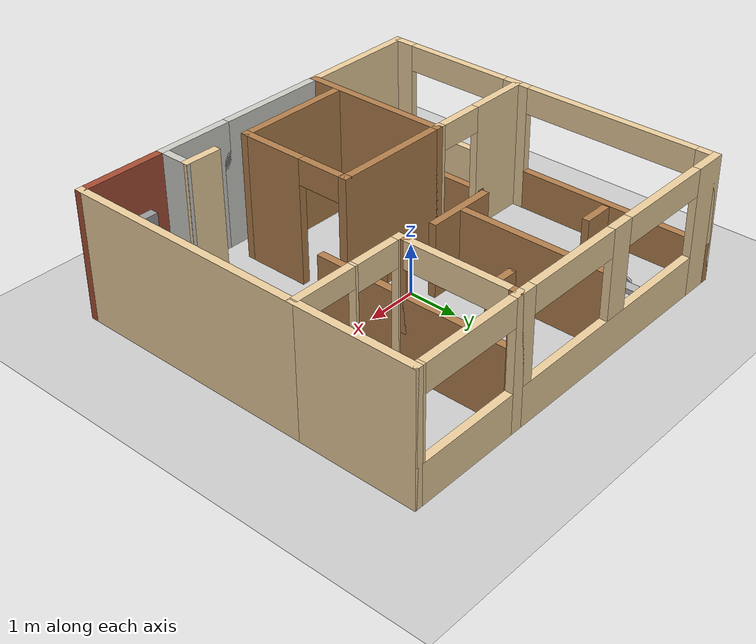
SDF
<sdf version="1.5">
 <world name="default">
  <plugin name="hello_world" filename="libhello_world.so"/>
  <light name="sun" type="directional">
   <pose>0 0 10 0 -0 0</pose>
   <diffuse>0.8 0.8 0.8 1</diffuse>
   <specular>0.2 0.2 0.2 1</specular>
   <attenuation>
    <range>1000</range>
    <constant>0.9</constant>
    <linear>0.01</linear>
    <quadratic>0.001</quadratic>
   </attenuation>
   <direction>-0.5 0.1 -0.9</direction>
  </light>
  <model name="ground_plane">
   <static>1</static>
   <link name="link">
    <collision name="collision">
     <geometry><plane><normal>0 0 1</normal><size>100 100</size></plane></geometry>
     <surface>
      <contact><collide_bitmask>65535</collide_bitmask></contact>
      <friction><ode><mu>100</mu><mu2>50</mu2></ode></friction>
     </surface>
    </collision>
    <visual name="visual">
     <cast_shadows>0</cast_shadows>
     <geometry><plane><normal>0 0 1</normal><size>100 100</size></plane></geometry>
     <material>
      <script><uri>file://media/materials/scripts/gazebo.material</uri><name>Gazebo/Grey</name></script>
     </material>
    </visual>
   </link>
  </model>
  <gravity>0 0 -9.8</gravity>
  <magnetic_field>6e-06 2.3e-05 -4.2e-05</magnetic_field>
  <atmosphere type="adiabatic"/>
  <physics name="default_physics" default="0" type="ode">
   <max_step_size>0.001</max_step_size>
   <real_time_factor>1</real_time_factor>
   <real_time_update_rate>1000</real_time_update_rate>
  </physics>
  <scene><ambient>0.4 0.4 0.4 1</ambient><background>0.7 0.7 0.7 1</background><shadows>1</shadows></scene>
  <audio><device>default</device></audio>
  <spherical_coordinates>
   <surface_model>EARTH_WGS84</surface_model>
   <latitude_deg>0</latitude_deg>
   <longitude_deg>0</longitude_deg>
   <elevation>0</elevation>
   <heading_deg>0</heading_deg>
  </spherical_coordinates>
  <model name="officeFloor">
   <pose>0.168407 0.014707 0 0 -0 0</pose>
   <link name="Stairs_2">
    <visual name="Stairs_2_Visual_0">
     <pose>3.37694 -1.65753 0.125 0 -0 0</pose>
     <geometry><box><size>0.8 0.16125 0.25</size></box></geometry>
     <material>
      <script><uri>file://media/materials/scripts/gazebo.material</uri><name>Gazebo/Grey</name></script>
      <ambient>1 1 1 1</ambient>
     </material>
     <meta><layer>0</layer></meta>
    </visual>
    <collision name="Stairs_2_Collision_0">
     <geometry><box><size>0.8 0.16125 0.25</size></box></geometry>
     <pose>3.37694 -1.65753 0.125 0 -0 0</pose>
    </collision>
    <visual name="Stairs_2_Visual_1">
     <pose>3.37694 -1.81879 0.375 0 -0 0</pose>
     <geometry><box><size>0.8 0.16125 0.25</size></box></geometry>
     <material>
      <script><uri>file://media/materials/scripts/gazebo.material</uri><name>Gazebo/Grey</name></script>
      <ambient>1 1 1 1</ambient>
     </material>
     <meta><layer>0</layer></meta>
    </visual>
    <collision name="Stairs_2_Collision_1">
     <geometry><box><size>0.8 0.16125 0.25</size></box></geometry>
     <pose>3.37694 -1.81879 0.375 0 -0 0</pose>
    </collision>
    <visual name="Stairs_2_Visual_2">
     <pose>3.37694 -1.98003 0.625 0 -0 0</pose>
     <geometry><box><size>0.8 0.16125 0.25</size></box></geometry>
     <material>
      <script><uri>file://media/materials/scripts/gazebo.material</uri><name>Gazebo/Grey</name></script>
      <ambient>1 1 1 1</ambient>
     </material>
     <meta><layer>0</layer></meta>
    </visual>
    <collision name="Stairs_2_Collision_2">
     <geometry><box><size>0.8 0.16125 0.25</size></box></geometry>
     <pose>3.37694 -1.98003 0.625 0 -0 0</pose>
    </collision>
    <visual name="Stairs_2_Visual_3">
     <pose>3.37694 -2.14128 0.875 0 -0 0</pose>
     <geometry><box><size>0.8 0.16125 0.25</size></box></geometry>
     <material>
      <script><uri>file://media/materials/scripts/gazebo.material</uri><name>Gazebo/Grey</name></script>
      <ambient>1 1 1 1</ambient>
     </material>
     <meta><layer>0</layer></meta>
    </visual>
    <collision name="Stairs_2_Collision_3">
     <geometry><box><size>0.8 0.16125 0.25</size></box></geometry>
     <pose>3.37694 -2.14128 0.875 0 -0 0</pose>
    </collision>
    <visual name="Stairs_2_Visual_4">
     <pose>3.37694 -2.30254 1.125 0 -0 0</pose>
     <geometry><box><size>0.8 0.16125 0.25</size></box></geometry>
     <material>
      <script><uri>file://media/materials/scripts/gazebo.material</uri><name>Gazebo/Grey</name></script>
      <ambient>1 1 1 1</ambient>
     </material>
     <meta><layer>0</layer></meta>
    </visual>
    <collision name="Stairs_2_Collision_4">
     <geometry><box><size>0.8 0.16125 0.25</size></box></geometry>
     <pose>3.37694 -2.30254 1.125 0 -0 0</pose>
    </collision>
    <visual name="Stairs_2_Visual_5">
     <pose>3.37694 -2.46379 1.375 0 -0 0</pose>
     <geometry><box><size>0.8 0.16125 0.25</size></box></geometry>
     <material>
      <script><uri>file://media/materials/scripts/gazebo.material</uri><name>Gazebo/Grey</name></script>
      <ambient>1 1 1 1</ambient>
     </material>
     <meta><layer>0</layer></meta>
    </visual>
    <collision name="Stairs_2_Collision_5">
     <geometry><box><size>0.8 0.16125 0.25</size></box></geometry>
     <pose>3.37694 -2.46379 1.375 0 -0 0</pose>
    </collision>
    <visual name="Stairs_2_Visual_6">
     <pose>3.37694 -2.62504 1.625 0 -0 0</pose>
     <geometry><box><size>0.8 0.16125 0.25</size></box></geometry>
     <material>
      <script><uri>file://media/materials/scripts/gazebo.material</uri><name>Gazebo/Grey</name></script>
      <ambient>1 1 1 1</ambient>
     </material>
     <meta><layer>0</layer></meta>
    </visual>
    <collision name="Stairs_2_Collision_6">
     <geometry><box><size>0.8 0.16125 0.25</size></box></geometry>
     <pose>3.37694 -2.62504 1.625 0 -0 0</pose>
    </collision>
    <visual name="Stairs_2_Visual_7">
     <pose>3.37694 -2.78628 1.875 0 -0 0</pose>
     <geometry><box><size>0.8 0.16125 0.25</size></box></geometry>
     <material>
      <script><uri>file://media/materials/scripts/gazebo.material</uri><name>Gazebo/Grey</name></script>
      <ambient>1 1 1 1</ambient>
     </material>
     <meta><layer>0</layer></meta>
    </visual>
    <collision name="Stairs_2_Collision_7">
     <geometry><box><size>0.8 0.16125 0.25</size></box></geometry>
     <pose>3.37694 -2.78628 1.875 0 -0 0</pose>
    </collision>
   </link>
   <link name="Wall_105">
    <collision name="Wall_105_Collision">
     <geometry><box><size>0.76 0.15 0.76</size></box></geometry>
     <pose>0 0 0.38 0 -0 0</pose>
    </collision>
    <visual name="Wall_105_Visual">
     <pose>0 0 0.38 0 -0 0</pose>
     <geometry><box><size>0.76 0.15 0.76</size></box></geometry>
     <material>
      <script><uri>file://media/materials/scripts/gazebo.material</uri><name>Gazebo/Wood</name></script>
      <ambient>1 1 1 1</ambient>
     </material>
     <meta><layer>0</layer></meta>
    </visual>
    <pose>-3.489 1.525 0 0 -0 0</pose>
   </link>
   <link name="Wall_108">
    <collision name="Wall_108_Collision">
     <geometry><box><size>3.26 0.15 1.46</size></box></geometry>
     <pose>-0.2 0 0.73 0 -0 0</pose>
    </collision>
    <visual name="Wall_108_Visual">
     <pose>-0.2 0 0.73 0 -0 0</pose>
     <geometry><box><size>3.26 0.15 1.46</size></box></geometry>
     <material>
      <script><uri>file://media/materials/scripts/gazebo.material</uri><name>Gazebo/Wood</name></script>
      <ambient>1 1 1 1</ambient>
     </material>
     <meta><layer>0</layer></meta>
    </visual>
    <pose>-1.07 1.748 0 0 -0 -1.5708</pose>
   </link>
   <link name="Wall_110">
    <collision name="Wall_110_Collision">
     <geometry><box><size>1.75 0.15 0.76</size></box></geometry>
     <pose>0 0 0.38 0 -0 0</pose>
    </collision>
    <visual name="Wall_110_Visual">
     <pose>0 0 0.38 0 -0 0</pose>
     <geometry><box><size>1.75 0.15 0.76</size></box></geometry>
     <material>
      <script><uri>file://media/materials/scripts/gazebo.material</uri><name>Gazebo/Wood</name></script>
      <ambient>1 1 1 1</ambient>
     </material>
     <meta><layer>0</layer></meta>
    </visual>
    <pose>-2.724 -1.403 0 0 -0 -1.5708</pose>
   </link>
   <link name="Wall_112">
    <collision name="Wall_112_Collision">
     <geometry><box><size>0.76 0.15 0.76</size></box></geometry>
     <pose>0 0 0.38 0 -0 0</pose>
    </collision>
    <visual name="Wall_112_Visual">
     <pose>0 0 0.38 0 -0 0</pose>
     <geometry><box><size>0.76 0.15 0.76</size></box></geometry>
     <material>
      <script><uri>file://media/materials/scripts/gazebo.material</uri><name>Gazebo/Wood</name></script>
      <ambient>1 1 1 1</ambient>
     </material>
     <meta><layer>0</layer></meta>
    </visual>
    <pose>1.215 1.525 0 0 -0 3.14159</pose>
   </link>
   <link name="Wall_114">
    <collision name="Wall_114_Collision">
     <geometry><box><size>0.82 0.15 0.76</size></box></geometry>
     <pose>0 0 0.38 0 -0 0</pose>
    </collision>
    <visual name="Wall_114_Visual">
     <pose>0 0 0.38 0 -0 0</pose>
     <geometry><box><size>0.82 0.15 0.76</size></box></geometry>
     <material>
      <script><uri>file://media/materials/scripts/gazebo.material</uri><name>Gazebo/Wood</name></script>
      <ambient>1 1 1 1</ambient>
     </material>
     <meta><layer>0</layer></meta>
    </visual>
    <pose>-1.37 1.525 0 0 -0 3.14159</pose>
   </link>
   <link name="Wall_116">
    <collision name="Wall_116_Collision">
     <geometry><box><size>0.76 0.15 0.76</size></box></geometry>
     <pose>0 0 0.38 0 -0 0</pose>
    </collision>
    <visual name="Wall_116_Visual">
     <pose>0 0 0.38 0 -0 0</pose>
     <geometry><box><size>0.76 0.15 0.76</size></box></geometry>
     <material>
      <script><uri>file://media/materials/scripts/gazebo.material</uri><name>Gazebo/Wood</name></script>
      <ambient>1 1 1 1</ambient>
     </material>
     <meta><layer>0</layer></meta>
    </visual>
    <pose>-0.73 1.525 0 0 -0 0</pose>
   </link>
   <link name="Wall_118">
    <collision name="Wall_118_Collision">
     <geometry><box><size>1.43 0.15 1.46</size></box></geometry>
     <pose>0 0 0.73 0 -0 0</pose>
    </collision>
    <visual name="Wall_118_Visual">
     <pose>0 0 0.73 0 -0 0</pose>
     <geometry><box><size>1.43 0.15 1.46</size></box></geometry>
     <material>
      <script><uri>file://media/materials/scripts/gazebo.material</uri><name>Gazebo/Wood</name></script>
      <ambient>1 1 1 1</ambient>
     </material>
     <meta><layer>0</layer></meta>
    </visual>
    <pose>-1.065 0.3 0 0 -0 0</pose>
   </link>
   <link name="Wall_50">
    <pose>-3.815 1.45 0 0 -0 1.5708</pose>
    <visual name="Wall_50_Visual_0">
     <pose>-1.95959 0 1.25 0 -0 0</pose>
     <geometry><box><size>0.35082 0.15 2.5</size></box></geometry>
     <material>
      <script><uri>file://media/materials/scripts/gazebo.material</uri><name>Gazebo/Grey</name></script>
      <ambient>0.921569 0.807843 0.615686 1</ambient>
     </material>
     <meta><layer>0</layer></meta>
    </visual>
    <collision name="Wall_50_Collision_0">
     <geometry><box><size>0.35082 0.15 2.5</size></box></geometry>
     <pose>-1.95959 0 1.25 0 -0 0</pose>
    </collision>
    <visual name="Wall_50_Visual_1">
     <pose>0.17541 0 0.39 0 -0 0</pose>
     <geometry><box><size>3.91918 0.15 0.78</size></box></geometry>
     <material>
      <script><uri>file://media/materials/scripts/gazebo.material</uri><name>Gazebo/Wood</name></script>
      <ambient>1 1 1 1</ambient>
     </material>
     <meta><layer>0</layer></meta>
    </visual>
    <collision name="Wall_50_Collision_1">
     <geometry><box><size>3.91918 0.15 0.78</size></box></geometry>
     <pose>0.17541 0 0.39 0 -0 0</pose>
    </collision>
    <visual name="Wall_50_Visual_2">
     <pose>1.92541 0 1.64 0 -0 0</pose>
     <geometry><box><size>0.41918 0.15 1.72</size></box></geometry>
     <material>
      <script><uri>file://media/materials/scripts/gazebo.material</uri><name>Gazebo/Grey</name></script>
      <ambient>0.921569 0.807843 0.615686 1</ambient>
     </material>
     <meta><layer>0</layer></meta>
    </visual>
    <collision name="Wall_50_Collision_2">
     <geometry><box><size>0.41918 0.15 1.72</size></box></geometry>
     <pose>1.92541 0 1.64 0 -0 0</pose>
    </collision>
    <visual name="Wall_50_Visual_3">
     <pose>-0.03418 0 2.24 0 -0 0</pose>
     <geometry><box><size>3.5 0.15 0.52</size></box></geometry>
     <material>
      <script><uri>file://media/materials/scripts/gazebo.material</uri><name>Gazebo/Grey</name></script>
      <ambient>0.921569 0.807843 0.615686 1</ambient>
     </material>
     <meta><layer>0</layer></meta>
    </visual>
    <collision name="Wall_50_Collision_3">
     <geometry><box><size>3.5 0.15 0.52</size></box></geometry>
     <pose>-0.03418 0 2.24 0 -0 0</pose>
    </collision>
   </link>
   <link name="Wall_52">
    <pose>-2.67 -0.61 0 0 -0 0</pose>
    <visual name="Wall_52_Visual_0">
     <pose>-0.560434 0 1.25 0 -0 0</pose>
     <geometry><box><size>1.31913 0.15 2.5</size></box></geometry>
     <material>
      <script><uri>file://media/materials/scripts/gazebo.material</uri><name>Gazebo/Grey</name></script>
      <ambient>0.921569 0.807843 0.615686 1</ambient>
     </material>
     <meta><layer>0</layer></meta>
    </visual>
    <collision name="Wall_52_Collision_0">
     <geometry><box><size>1.31913 0.15 2.5</size></box></geometry>
     <pose>-0.560434 0 1.25 0 -0 0</pose>
    </collision>
    <visual name="Wall_52_Visual_1">
     <pose>1.10957 0 1.25 0 -0 0</pose>
     <geometry><box><size>0.220869 0.15 2.5</size></box></geometry>
     <material>
      <script><uri>file://media/materials/scripts/gazebo.material</uri><name>Gazebo/Grey</name></script>
      <ambient>0.921569 0.807843 0.615686 1</ambient>
     </material>
     <meta><layer>0</layer></meta>
    </visual>
    <collision name="Wall_52_Collision_1">
     <geometry><box><size>0.220869 0.15 2.5</size></box></geometry>
     <pose>1.10957 0 1.25 0 -0 0</pose>
    </collision>
    <visual name="Wall_52_Visual_2">
     <pose>0.549131 0 2.25 0 -0 0</pose>
     <geometry><box><size>0.9 0.15 0.5</size></box></geometry>
     <material>
      <script><uri>file://media/materials/scripts/gazebo.material</uri><name>Gazebo/Grey</name></script>
      <ambient>0.921569 0.807843 0.615686 1</ambient>
     </material>
     <meta><layer>0</layer></meta>
    </visual>
    <collision name="Wall_52_Collision_2">
     <geometry><box><size>0.9 0.15 0.5</size></box></geometry>
     <pose>0.549131 0 2.25 0 -0 0</pose>
    </collision>
   </link>
   <link name="Wall_54">
    <pose>-3.815 -2.06 0 0 -0 -1.5708</pose>
    <visual name="Wall_54_Visual_0">
     <pose>-1.34915 0 1.25 0 -0 0</pose>
     <geometry><box><size>0.351709 0.15 2.5</size></box></geometry>
     <material>
      <script><uri>file://media/materials/scripts/gazebo.material</uri><name>Gazebo/Grey</name></script>
      <ambient>0.921569 0.807843 0.615686 1</ambient>
     </material>
     <meta><layer>0</layer></meta>
    </visual>
    <collision name="Wall_54_Collision_0">
     <geometry><box><size>0.351709 0.15 2.5</size></box></geometry>
     <pose>-1.34915 0 1.25 0 -0 0</pose>
    </collision>
    <visual name="Wall_54_Visual_1">
     <pose>0.175854 0 0.39 0 -0 0</pose>
     <geometry><box><size>2.69829 0.15 0.78</size></box></geometry>
     <material>
      <script><uri>file://media/materials/scripts/gazebo.material</uri><name>Gazebo/Grey</name></script>
      <ambient>0.921569 0.807843 0.615686 1</ambient>
     </material>
     <meta><layer>0</layer></meta>
    </visual>
    <collision name="Wall_54_Collision_1">
     <geometry><box><size>2.69829 0.15 0.78</size></box></geometry>
     <pose>0.175854 0 0.39 0 -0 0</pose>
    </collision>
    <visual name="Wall_54_Visual_2">
     <pose>1.27585 0 1.64 0 -0 0</pose>
     <geometry><box><size>0.498291 0.15 1.72</size></box></geometry>
     <material>
      <script><uri>file://media/materials/scripts/gazebo.material</uri><name>Gazebo/Grey</name></script>
      <ambient>0.921569 0.807843 0.615686 1</ambient>
     </material>
     <meta><layer>0</layer></meta>
    </visual>
    <collision name="Wall_54_Collision_2">
     <geometry><box><size>0.498291 0.15 1.72</size></box></geometry>
     <pose>1.27585 0 1.64 0 -0 0</pose>
    </collision>
    <visual name="Wall_54_Visual_3">
     <pose>-0.073291 0 2.24 0 -0 0</pose>
     <geometry><box><size>2.2 0.15 0.52</size></box></geometry>
     <material>
      <script><uri>file://media/materials/scripts/gazebo.material</uri><name>Gazebo/Grey</name></script>
      <ambient>0.921569 0.807843 0.615686 1</ambient>
     </material>
     <meta><layer>0</layer></meta>
    </visual>
    <collision name="Wall_54_Collision_3">
     <geometry><box><size>2.2 0.15 0.52</size></box></geometry>
     <pose>-0.073291 0 2.24 0 -0 0</pose>
    </collision>
   </link>
   <link name="Wall_56">
    <collision name="Wall_56_Collision">
     <geometry><box><size>3.05 0.15 2.5</size></box></geometry>
     <pose>0 0 1.25 0 -0 0</pose>
    </collision>
    <visual name="Wall_56_Visual">
     <pose>0 0 1.25 0 -0 0</pose>
     <geometry><box><size>3.05 0.15 2.5</size></box></geometry>
     <material>
      <script><uri>file://media/materials/scripts/gazebo.material</uri><name>Gazebo/Wood</name></script>
      <ambient>1 1 1 1</ambient>
     </material>
     <meta><layer>0</layer></meta>
    </visual>
    <pose>-1.525 -2.06 0 0 -0 -1.5708</pose>
   </link>
   <link name="Wall_58">
    <collision name="Wall_58_Collision">
     <geometry><box><size>2.44 0.15 2.5</size></box></geometry>
     <pose>0 0 1.25 0 -0 0</pose>
    </collision>
    <visual name="Wall_58_Visual">
     <pose>0 0 1.25 0 -0 0</pose>
     <geometry><box><size>2.44 0.15 2.5</size></box></geometry>
     <material>
      <script><uri>file://media/materials/scripts/gazebo.material</uri><name>Gazebo/Grey</name></script>
      <ambient>0.921569 0.807843 0.615686 1</ambient>
     </material>
     <meta><layer>0</layer></meta>
    </visual>
    <pose>-2.67 -3.51 0 0 -0 3.14159</pose>
   </link>
   <link name="Wall_60">
    <collision name="Wall_60_Collision">
     <geometry><box><size>2.44 0.15 2.5</size></box></geometry>
     <pose>0 0 1.25 0 -0 0</pose>
    </collision>
    <visual name="Wall_60_Visual">
     <pose>0 0 1.25 0 -0 0</pose>
     <geometry><box><size>2.44 0.15 2.5</size></box></geometry>
     <material>
      <script><uri>file://media/materials/scripts/gazebo.material</uri><name>Gazebo/Wood</name></script>
      <ambient>1 1 1 1</ambient>
     </material>
     <meta><layer>0</layer></meta>
    </visual>
    <pose>-0.38 -0.61 0 0 -0 0</pose>
   </link>
   <link name="Wall_62">
    <pose>0.765 -1.755 0 0 -0 -1.5708</pose>
    <visual name="Wall_62_Visual_0">
     <pose>-1.13395 0 1.25 0 -0 0</pose>
     <geometry><box><size>0.172097 0.15 2.5</size></box></geometry>
     <material>
      <script><uri>file://media/materials/scripts/gazebo.material</uri><name>Gazebo/Wood</name></script>
      <ambient>1 1 1 1</ambient>
     </material>
     <meta><layer>0</layer></meta>
    </visual>
    <collision name="Wall_62_Collision_0">
     <geometry><box><size>0.172097 0.15 2.5</size></box></geometry>
     <pose>-1.13395 0 1.25 0 -0 0</pose>
    </collision>
    <visual name="Wall_62_Visual_1">
     <pose>0.536048 0 1.25 0 -0 0</pose>
     <geometry><box><size>1.3679 0.15 2.5</size></box></geometry>
     <material>
      <script><uri>file://media/materials/scripts/gazebo.material</uri><name>Gazebo/Wood</name></script>
      <ambient>1 1 1 1</ambient>
     </material>
     <meta><layer>0</layer></meta>
    </visual>
    <collision name="Wall_62_Collision_1">
     <geometry><box><size>1.3679 0.15 2.5</size></box></geometry>
     <pose>0.536048 0 1.25 0 -0 0</pose>
    </collision>
    <visual name="Wall_62_Visual_2">
     <pose>-0.597903 0 2.25 0 -0 0</pose>
     <geometry><box><size>0.9 0.15 0.5</size></box></geometry>
     <material>
      <script><uri>file://media/materials/scripts/gazebo.material</uri><name>Gazebo/Wood</name></script>
      <ambient>1 1 1 1</ambient>
     </material>
     <meta><layer>0</layer></meta>
    </visual>
    <collision name="Wall_62_Collision_2">
     <geometry><box><size>0.9 0.15 0.5</size></box></geometry>
     <pose>-0.597903 0 2.25 0 -0 0</pose>
    </collision>
   </link>
   <link name="Wall_64">
    <collision name="Wall_64_Collision">
     <geometry><box><size>2.44 0.15 2.5</size></box></geometry>
     <pose>0 0 1.25 0 -0 0</pose>
    </collision>
    <visual name="Wall_64_Visual">
     <pose>0 0 1.25 0 -0 0</pose>
     <geometry><box><size>2.44 0.15 2.5</size></box></geometry>
     <material>
      <script><uri>file://media/materials/scripts/gazebo.material</uri><name>Gazebo/Wood</name></script>
      <ambient>1 1 1 1</ambient>
     </material>
     <meta><layer>0</layer></meta>
    </visual>
    <pose>-0.38 -2.9 0 0 -0 3.14159</pose>
   </link>
   <link name="Wall_66">
    <collision name="Wall_66_Collision">
     <geometry><box><size>2.44 0.15 2.5</size></box></geometry>
     <pose>0 0 1.25 0 -0 0</pose>
    </collision>
    <visual name="Wall_66_Visual">
     <pose>0 0 1.25 0 -0 0</pose>
     <geometry><box><size>2.44 0.15 2.5</size></box></geometry>
     <material>
      <script><uri>file://media/materials/scripts/gazebo.material</uri><name>Gazebo/CeilingTiled</name></script>
      <ambient>1 1 1 1</ambient>
     </material>
     <meta><layer>0</layer></meta>
    </visual>
    <pose>-0.38 -3.51 0 0 -0 0</pose>
   </link>
   <link name="Wall_68">
    <pose>-1.145 3.51 0 0 -0 0</pose>
    <visual name="Wall_68_Visual_0">
     <pose>-2.41081 0 1.25 0 -0 0</pose>
     <geometry><box><size>0.668381 0.15 2.5</size></box></geometry>
     <material>
      <script><uri>file://media/materials/scripts/gazebo.material</uri><name>Gazebo/Grey</name></script>
      <ambient>0.921569 0.807843 0.615686 1</ambient>
     </material>
     <meta><layer>0</layer></meta>
    </visual>
    <collision name="Wall_68_Collision_0">
     <geometry><box><size>0.668381 0.15 2.5</size></box></geometry>
     <pose>-2.41081 0 1.25 0 -0 0</pose>
    </collision>
    <visual name="Wall_68_Visual_1">
     <pose>0.334191 0 0.39 0 -0 0</pose>
     <geometry><box><size>4.82162 0.15 0.78</size></box></geometry>
     <material>
      <script><uri>file://media/materials/scripts/gazebo.material</uri><name>Gazebo/Grey</name></script>
      <ambient>0.921569 0.807843 0.615686 1</ambient>
     </material>
     <meta><layer>0</layer></meta>
    </visual>
    <collision name="Wall_68_Collision_1">
     <geometry><box><size>4.82162 0.15 0.78</size></box></geometry>
     <pose>0.334191 0 0.39 0 -0 0</pose>
    </collision>
    <visual name="Wall_68_Visual_2">
     <pose>0.15529 0 1.64 0 -0 0</pose>
     <geometry><box><size>0.463818 0.15 1.72</size></box></geometry>
     <material>
      <script><uri>file://media/materials/scripts/gazebo.material</uri><name>Gazebo/Grey</name></script>
      <ambient>0.921569 0.807843 0.615686 1</ambient>
     </material>
     <meta><layer>0</layer></meta>
    </visual>
    <collision name="Wall_68_Collision_2">
     <geometry><box><size>0.463818 0.15 1.72</size></box></geometry>
     <pose>0.15529 0 1.64 0 -0 0</pose>
    </collision>
    <visual name="Wall_68_Visual_3">
     <pose>2.5661 0 1.64 0 -0 0</pose>
     <geometry><box><size>0.357801 0.15 1.72</size></box></geometry>
     <material>
      <script><uri>file://media/materials/scripts/gazebo.material</uri><name>Gazebo/Grey</name></script>
      <ambient>0.921569 0.807843 0.615686 1</ambient>
     </material>
     <meta><layer>0</layer></meta>
    </visual>
    <collision name="Wall_68_Collision_3">
     <geometry><box><size>0.357801 0.15 1.72</size></box></geometry>
     <pose>2.5661 0 1.64 0 -0 0</pose>
    </collision>
    <visual name="Wall_68_Visual_4">
     <pose>-1.07662 0 2.24 0 -0 0</pose>
     <geometry><box><size>2 0.15 0.52</size></box></geometry>
     <material>
      <script><uri>file://media/materials/scripts/gazebo.material</uri><name>Gazebo/Grey</name></script>
      <ambient>0.921569 0.807843 0.615686 1</ambient>
     </material>
     <meta><layer>0</layer></meta>
    </visual>
    <collision name="Wall_68_Collision_4">
     <geometry><box><size>2 0.15 0.52</size></box></geometry>
     <pose>-1.07662 0 2.24 0 -0 0</pose>
    </collision>
    <visual name="Wall_68_Visual_5">
     <pose>1.3872 0 2.24 0 -0 0</pose>
     <geometry><box><size>2 0.15 0.52</size></box></geometry>
     <material>
      <script><uri>file://media/materials/scripts/gazebo.material</uri><name>Gazebo/Grey</name></script>
      <ambient>0.921569 0.807843 0.615686 1</ambient>
     </material>
     <meta><layer>0</layer></meta>
    </visual>
    <collision name="Wall_68_Collision_5">
     <geometry><box><size>2 0.15 0.52</size></box></geometry>
     <pose>1.3872 0 2.24 0 -0 0</pose>
    </collision>
   </link>
   <link name="Wall_70">
    <pose>1.525 1.45 0 0 -0 -1.5708</pose>
    <visual name="Wall_70_Visual_0">
     <pose>-2.01925 0 1.25 0 -0 0</pose>
     <geometry><box><size>0.231495 0.15 2.5</size></box></geometry>
     <material>
      <script><uri>file://media/materials/scripts/gazebo.material</uri><name>Gazebo/Wood</name></script>
      <ambient>1 1 1 1</ambient>
     </material>
     <meta><layer>0</layer></meta>
    </visual>
    <collision name="Wall_70_Collision_0">
     <geometry><box><size>0.231495 0.15 2.5</size></box></geometry>
     <pose>-2.01925 0 1.25 0 -0 0</pose>
    </collision>
    <visual name="Wall_70_Visual_1">
     <pose>0.016 0 0.73 0 -0 0</pose>
     <geometry><box><size>3.8385 0.15 1.46</size></box></geometry>
     <material>
      <script><uri>file://media/materials/scripts/gazebo.material</uri><name>Gazebo/Wood</name></script>
      <ambient>1 1 1 1</ambient>
     </material>
     <meta><layer>0</layer></meta>
    </visual>
    <collision name="Wall_70_Collision_1">
     <geometry><box><size>3.8385 0.15 1.46</size></box></geometry>
     <pose>0.016 0 0.73 0 -0 0</pose>
    </collision>
    <visual name="Wall_70_Visual_2">
     <pose>0.109009 0 1.64 0 -0 0</pose>
     <geometry><box><size>0.15 0.15 1.72</size></box></geometry>
     <material>
      <script><uri>file://media/materials/scripts/gazebo.material</uri><name>Gazebo/Wood</name></script>
      <ambient>1 1 1 1</ambient>
     </material>
     <meta><layer>0</layer></meta>
    </visual>
    <collision name="Wall_70_Collision_2">
     <geometry><box><size>0 0 0</size></box></geometry>
     <pose>1.11575 0 1.64 0 -0 0</pose>
    </collision>
    <visual name="Wall_70_Visual_3">
     <pose>-0.903505 0 2.24 0 -0 0</pose>
     <geometry><box><size>2 0.15 0.52</size></box></geometry>
     <material>
      <script><uri>file://media/materials/scripts/gazebo.material</uri><name>Gazebo/Grey</name></script>
      <ambient>0.921569 0.807843 0.615686 1</ambient>
     </material>
     <meta><layer>0</layer></meta>
    </visual>
    <collision name="Wall_70_Collision_3">
     <geometry><box><size>2 0.15 0.52</size></box></geometry>
     <pose>-0.903505 0 2.24 0 -0 0</pose>
    </collision>
   </link>
   <link name="Wall_120">
    <collision name="Wall_120_Collision">
     <geometry><box><size>0.715 0.15 1.46</size></box></geometry>
     <pose>0 0 0.73 0 -0 0</pose>
    </collision>
    <visual name="Wall_120_Visual">
     <pose>0 0 0.73 0 -0 0</pose>
     <geometry><box><size>0.715 0.15 1.46</size></box></geometry>
     <material>
      <script><uri>file://media/materials/scripts/gazebo.material</uri><name>Gazebo/Wood</name></script>
      <ambient>1 1 1 1</ambient>
     </material>
     <meta><layer>0</layer></meta>
    </visual>
    <pose>1.215 0.3 0 0 -0 0</pose>
   </link>
   <link name="Wall_72">
    <pose>2.67 3.51 0 0 -0 0</pose>
    <visual name="Wall_72_Visual_0">
     <pose>-1.10186 0 1.25 0 -0 0</pose>
     <geometry><box><size>0.236274 0.15 2.5</size></box></geometry>
     <material>
      <script><uri>file://media/materials/scripts/gazebo.material</uri><name>Gazebo/Grey</name></script>
      <ambient>0.921569 0.807843 0.615686 1</ambient>
     </material>
     <meta><layer>0</layer></meta>
    </visual>
    <collision name="Wall_72_Collision_0">
     <geometry><box><size>0.236274 0.15 2.5</size></box></geometry>
     <pose>-1.10186 0 1.25 0 -0 0</pose>
    </collision>
    <visual name="Wall_72_Visual_1">
     <pose>0.118137 0 0.39 0 -0 0</pose>
     <geometry><box><size>2.20373 0.15 0.78</size></box></geometry>
     <material>
      <script><uri>file://media/materials/scripts/gazebo.material</uri><name>Gazebo/Grey</name></script>
      <ambient>0.921569 0.807843 0.615686 1</ambient>
     </material>
     <meta><layer>0</layer></meta>
    </visual>
    <collision name="Wall_72_Collision_1">
     <geometry><box><size>2.20373 0.15 0.78</size></box></geometry>
     <pose>0.118137 0 0.39 0 -0 0</pose>
    </collision>
    <visual name="Wall_72_Visual_2">
     <pose>1.11814 0 1.64 0 -0 0</pose>
     <geometry><box><size>0.203726 0.15 1.72</size></box></geometry>
     <material>
      <script><uri>file://media/materials/scripts/gazebo.material</uri><name>Gazebo/Grey</name></script>
      <ambient>0.921569 0.807843 0.615686 1</ambient>
     </material>
     <meta><layer>0</layer></meta>
    </visual>
    <collision name="Wall_72_Collision_2">
     <geometry><box><size>0.203726 0.15 1.72</size></box></geometry>
     <pose>1.11814 0 1.64 0 -0 0</pose>
    </collision>
    <visual name="Wall_72_Visual_3">
     <pose>0.016274 0 2.24 0 -0 0</pose>
     <geometry><box><size>2 0.15 0.52</size></box></geometry>
     <material>
      <script><uri>file://media/materials/scripts/gazebo.material</uri><name>Gazebo/Grey</name></script>
      <ambient>0.921569 0.807843 0.615686 1</ambient>
     </material>
     <meta><layer>0</layer></meta>
    </visual>
    <collision name="Wall_72_Collision_3">
     <geometry><box><size>2 0.15 0.52</size></box></geometry>
     <pose>0.016274 0 2.24 0 -0 0</pose>
    </collision>
   </link>
   <link name="Wall_74">
    <collision name="Wall_74_Collision">
     <geometry><box><size>2.44 0.15 2.5</size></box></geometry>
     <pose>0 0 1.25 0 -0 0</pose>
    </collision>
    <visual name="Wall_74_Visual">
     <pose>0 0 1.25 0 -0 0</pose>
     <geometry><box><size>2.44 0.15 2.5</size></box></geometry>
     <material>
      <script><uri>file://media/materials/scripts/gazebo.material</uri><name>Gazebo/Grey</name></script>
      <ambient>0.921569 0.807843 0.615686 1</ambient>
     </material>
     <meta><layer>0</layer></meta>
    </visual>
    <pose>3.815 2.365 0 0 -0 -1.5708</pose>
   </link>
   <link name="Wall_76">
    <pose>2.67 1.22 0 0 -0 3.14159</pose>
    <visual name="Wall_76_Visual_0">
     <pose>-1.16956 0 1.25 0 -0 0</pose>
     <geometry><box><size>0.100886 0.15 2.5</size></box></geometry>
     <material>
      <script><uri>file://media/materials/scripts/gazebo.material</uri><name>Gazebo/Grey</name></script>
      <ambient>0.921569 0.807843 0.615686 1</ambient>
     </material>
     <meta><layer>0</layer></meta>
    </visual>
    <collision name="Wall_76_Collision_0">
     <geometry><box><size>0.100886 0.15 2.5</size></box></geometry>
     <pose>-1.16956 0 1.25 0 -0 0</pose>
    </collision>
    <visual name="Wall_76_Visual_1">
     <pose>1.12857 0 1.25 0 -0 0</pose>
     <geometry><box><size>0.182868 0.15 2.5</size></box></geometry>
     <material>
      <script><uri>file://media/materials/scripts/gazebo.material</uri><name>Gazebo/Grey</name></script>
      <ambient>0.921569 0.807843 0.615686 1</ambient>
     </material>
     <meta><layer>0</layer></meta>
    </visual>
    <collision name="Wall_76_Collision_1">
     <geometry><box><size>0.182868 0.15 2.5</size></box></geometry>
     <pose>1.12857 0 1.25 0 -0 0</pose>
    </collision>
    <visual name="Wall_76_Visual_2">
     <pose>-0.490991 0 0.5 0 -0 0</pose>
     <geometry><box><size>1.25625 0.15 1</size></box></geometry>
     <material>
      <script><uri>file://media/materials/scripts/gazebo.material</uri><name>Gazebo/Grey</name></script>
      <ambient>0.921569 0.807843 0.615686 1</ambient>
     </material>
     <meta><layer>0</layer></meta>
    </visual>
    <collision name="Wall_76_Collision_2">
     <geometry><box><size>1.25625 0.15 1</size></box></geometry>
     <pose>-0.490991 0 0.5 0 -0 0</pose>
    </collision>
    <visual name="Wall_76_Visual_3">
     <pose>0.109009 0 1.75 0 -0 0</pose>
     <geometry><box><size>0.056246 0.15 1.5</size></box></geometry>
     <material>
      <script><uri>file://media/materials/scripts/gazebo.material</uri><name>Gazebo/Grey</name></script>
      <ambient>0.921569 0.807843 0.615686 1</ambient>
     </material>
     <meta><layer>0</layer></meta>
    </visual>
    <collision name="Wall_76_Collision_3">
     <geometry><box><size>0.056246 0.15 1.5</size></box></geometry>
     <pose>0.109009 0 1.75 0 -0 0</pose>
    </collision>
    <visual name="Wall_76_Visual_4">
     <pose>0.587132 0 2.25 0 -0 0</pose>
     <geometry><box><size>0.9 0.15 0.5</size></box></geometry>
     <material>
      <script><uri>file://media/materials/scripts/gazebo.material</uri><name>Gazebo/Grey</name></script>
      <ambient>0.921569 0.807843 0.615686 1</ambient>
     </material>
     <meta><layer>0</layer></meta>
    </visual>
    <collision name="Wall_76_Collision_4">
     <geometry><box><size>0.9 0.15 0.5</size></box></geometry>
     <pose>0.587132 0 2.25 0 -0 0</pose>
    </collision>
    <visual name="Wall_76_Visual_5">
     <pose>-0.519114 0 2.3 0 -0 0</pose>
     <geometry><box><size>1.2 0.15 0.4</size></box></geometry>
     <material>
      <script><uri>file://media/materials/scripts/gazebo.material</uri><name>Gazebo/Grey</name></script>
      <ambient>0.921569 0.807843 0.615686 1</ambient>
     </material>
     <meta><layer>0</layer></meta>
    </visual>
    <collision name="Wall_76_Collision_5">
     <geometry><box><size>1.2 0.15 0.4</size></box></geometry>
     <pose>-0.519114 0 2.3 0 -0 0</pose>
    </collision>
   </link>
   <link name="Wall_85">
    <collision name="Wall_85_Collision">
     <geometry><box><size>1.5 0.15 2.5</size></box></geometry>
     <pose>0 0 1.25 0 -0 0</pose>
    </collision>
    <visual name="Wall_85_Visual">
     <pose>0 0 1.25 0 -0 0</pose>
     <geometry><box><size>1.5 0.15 2.5</size></box></geometry>
     <material>
      <script><uri>file://media/materials/scripts/gazebo.material</uri><name>Gazebo/CeilingTiled</name></script>
      <ambient>1 1 1 1</ambient>
     </material>
     <meta><layer>0</layer></meta>
    </visual>
    <pose>1.44 -3.51 0 0 -0 0</pose>
   </link>
   <link name="Wall_90">
    <collision name="Wall_90_Collision">
     <geometry><box><size>0.75 0.15 2.5</size></box></geometry>
     <pose>0 0 1.25 0 -0 0</pose>
    </collision>
    <visual name="Wall_90_Visual">
     <pose>0 0 1.25 0 -0 0</pose>
     <geometry><box><size>0.75 0.15 2.5</size></box></geometry>
     <material>
      <script><uri>file://media/materials/scripts/gazebo.material</uri><name>Gazebo/CeilingTiled</name></script>
      <ambient>1 1 1 1</ambient>
     </material>
     <meta><layer>0</layer></meta>
    </visual>
    <pose>2.115 -3.21 0 0 -0 1.5708</pose>
   </link>
   <link name="Wall_91">
    <collision name="Wall_91_Collision">
     <geometry><box><size>0.740085 0.15 2.5</size></box></geometry>
     <pose>0 0 1.25 0 -0 0</pose>
    </collision>
    <visual name="Wall_91_Visual">
     <pose>0 0 1.25 0 -0 0</pose>
     <geometry><box><size>0.740085 0.15 2.5</size></box></geometry>
     <material>
      <script><uri>file://media/materials/scripts/gazebo.material</uri><name>Gazebo/Grey</name></script>
      <ambient>0.921569 0.807843 0.615686 1</ambient>
     </material>
     <meta><layer>0</layer></meta>
    </visual>
    <pose>1.82 -2.905 0 0 -0 3.12465</pose>
   </link>
   <link name="Wall_93">
    <collision name="Wall_93_Collision">
     <geometry><box><size>1.5 0.15 0.76</size></box></geometry>
     <pose>0 0 0.38 0 -0 0</pose>
    </collision>
    <visual name="Wall_93_Visual">
     <pose>0 0 0.38 0 -0 0</pose>
     <geometry><box><size>1.5 0.15 0.76</size></box></geometry>
     <material>
      <script><uri>file://media/materials/scripts/gazebo.material</uri><name>Gazebo/Grey</name></script>
      <ambient>0.921569 0.807843 0.615686 1</ambient>
     </material>
     <meta><layer>0</layer></meta>
    </visual>
    <pose>2.115 -2.235 0 0 -0 1.5708</pose>
   </link>
   <link name="Wall_95">
    <collision name="Wall_95_Collision">
     <geometry><box><size>4.88 0.15 2.5</size></box></geometry>
     <pose>0 0 1.25 0 -0 0</pose>
    </collision>
    <visual name="Wall_95_Visual">
     <pose>0 0 1.25 0 -0 0</pose>
     <geometry><box><size>4.88 0.15 2.5</size></box></geometry>
     <material>
      <script><uri>file://media/materials/scripts/gazebo.material</uri><name>Gazebo/Grey</name></script>
      <ambient>0.921569 0.807843 0.615686 1</ambient>
     </material>
     <meta><layer>0</layer></meta>
    </visual>
    <pose>3.815 -1.145 0 0 -0 -1.5708</pose>
   </link>
   <link name="Wall_97">
    <collision name="Wall_97_Collision">
     <geometry><box><size>1.85 0.15 2.5</size></box></geometry>
     <pose>0 0 1.25 0 -0 0</pose>
    </collision>
    <visual name="Wall_97_Visual">
     <pose>0 0 1.25 0 -0 0</pose>
     <geometry><box><size>1.85 0.15 2.5</size></box></geometry>
     <material>
      <script><uri>file://media/materials/scripts/gazebo.material</uri><name>Gazebo/Bricks</name></script>
      <ambient>1 1 1 1</ambient>
     </material>
     <meta><layer>0</layer></meta>
    </visual>
    <pose>2.965 -3.51 0 0 -0 3.14159</pose>
   </link>
   <static>1</static>
  </model>
  <model name="robo2wd">
   <static>0</static>
   <link name="chassis">
    <pose>0 0 0.1 0 -0 0</pose>
    <collision name="collision"><geometry><box><size>0.4 0.2 0.1</size></box></geometry></collision>
    <visual name="visual"><geometry><box><size>0.4 0.2 0.1</size></box></geometry></visual>
    <collision name="caster_collision">
     <pose>-0.15 0 -0.05 0 -0 0</pose>
     <geometry><sphere><radius>0.05</radius></sphere></geometry>
     <surface><friction><ode><mu>0</mu><mu2>0</mu2><slip1>1</slip1><slip2>1</slip2></ode></friction></surface>
    </collision>
    <visual name="caster_visual">
     <pose>-0.15 0 -0.05 0 -0 0</pose>
     <geometry><sphere><radius>0.05</radius></sphere></geometry>
    </visual>
    <inertial>
     <inertia><ixx>1</ixx><ixy>0</ixy><ixz>0</ixz><iyy>1</iyy><iyz>0</iyz><izz>1</izz></inertia>
     <mass>1</mass>
    </inertial>
   </link>
   <link name="left_wheel">
    <pose>0.1 0.13 0.1 -0 1.5707 1.5707</pose>
    <collision name="collision">
     <geometry><cylinder><radius>0.1</radius><length>0.05</length></cylinder></geometry>
    </collision>
    <visual name="visual">
     <geometry><cylinder><radius>0.1</radius><length>0.05</length></cylinder></geometry>
    </visual>
    <inertial>
     <inertia><ixx>1</ixx><ixy>0</ixy><ixz>0</ixz><iyy>1</iyy><iyz>0</iyz><izz>1</izz></inertia>
     <mass>1</mass>
    </inertial>
   </link>
   <link name="right_wheel">
    <pose>0.1 -0.13 0.1 -0 1.5707 1.5707</pose>
    <collision name="collision">
     <geometry><cylinder><radius>0.1</radius><length>0.05</length></cylinder></geometry>
    </collision>
    <visual name="visual">
     <geometry><cylinder><radius>0.1</radius><length>0.05</length></cylinder></geometry>
    </visual>
    <inertial>
     <inertia><ixx>1</ixx><ixy>0</ixy><ixz>0</ixz><iyy>1</iyy><iyz>0</iyz><izz>1</izz></inertia>
     <mass>1</mass>
    </inertial>
   </link>
   <joint name="left_wheel_hinge" type="revolute">
    <pose>0 0 -0.03 0 -0 0</pose>
    <child>left_wheel</child>
    <parent>chassis</parent>
    <axis>
     <xyz>0 0 1</xyz>
     <use_parent_model_frame>0</use_parent_model_frame>
     <limit><lower>-1e+16</lower><upper>1e+16</upper></limit>
     <dynamics><spring_reference>0</spring_reference><spring_stiffness>0</spring_stiffness></dynamics>
    </axis>
   </joint>
   <joint name="right_wheel_hinge" type="revolute">
    <pose>0 0 0.03 0 -0 0</pose>
    <child>right_wheel</child>
    <parent>chassis</parent>
    <axis>
     <xyz>0 0 1</xyz>
     <use_parent_model_frame>0</use_parent_model_frame>
     <limit><lower>-1e+16</lower><upper>1e+16</upper></limit>
     <dynamics><spring_reference>0</spring_reference><spring_stiffness>0</spring_stiffness></dynamics>
    </axis>
   </joint>
   <pose>0.444505 -1.08242 4e-06 2e-05 -1.8e-05 0.007235</pose>
  </model>
  <model name="robo2wd_0">
   <static>0</static>
   <link name="chassis">
    <pose>0 0 0.1 0 -0 0</pose>
    <collision name="collision"><geometry><box><size>0.4 0.2 0.1</size></box></geometry></collision>
    <visual name="visual"><geometry><box><size>0.4 0.2 0.1</size></box></geometry></visual>
    <collision name="caster_collision">
     <pose>-0.15 0 -0.05 0 -0 0</pose>
     <geometry><sphere><radius>0.05</radius></sphere></geometry>
     <surface><friction><ode><mu>0</mu><mu2>0</mu2><slip1>1</slip1><slip2>1</slip2></ode></friction></surface>
    </collision>
    <visual name="caster_visual">
     <pose>-0.15 0 -0.05 0 -0 0</pose>
     <geometry><sphere><radius>0.05</radius></sphere></geometry>
    </visual>
    <inertial>
     <inertia><ixx>1</ixx><ixy>0</ixy><ixz>0</ixz><iyy>1</iyy><iyz>0</iyz><izz>1</izz></inertia>
     <mass>1</mass>
    </inertial>
   </link>
   <link name="left_wheel">
    <pose>0.1 0.13 0.1 -0 1.5707 1.5707</pose>
    <collision name="collision">
     <geometry><cylinder><radius>0.1</radius><length>0.05</length></cylinder></geometry>
    </collision>
    <visual name="visual">
     <geometry><cylinder><radius>0.1</radius><length>0.05</length></cylinder></geometry>
    </visual>
    <inertial>
     <inertia><ixx>1</ixx><ixy>0</ixy><ixz>0</ixz><iyy>1</iyy><iyz>0</iyz><izz>1</izz></inertia>
     <mass>1</mass>
    </inertial>
   </link>
   <link name="right_wheel">
    <pose>0.1 -0.13 0.1 -0 1.5707 1.5707</pose>
    <collision name="collision">
     <geometry><cylinder><radius>0.1</radius><length>0.05</length></cylinder></geometry>
    </collision>
    <visual name="visual">
     <geometry><cylinder><radius>0.1</radius><length>0.05</length></cylinder></geometry>
    </visual>
    <inertial>
     <inertia><ixx>1</ixx><ixy>0</ixy><ixz>0</ixz><iyy>1</iyy><iyz>0</iyz><izz>1</izz></inertia>
     <mass>1</mass>
    </inertial>
   </link>
   <joint name="left_wheel_hinge" type="revolute">
    <pose>0 0 -0.03 0 -0 0</pose>
    <child>left_wheel</child>
    <parent>chassis</parent>
    <axis>
     <xyz>0 0 1</xyz>
     <use_parent_model_frame>0</use_parent_model_frame>
     <limit><lower>-1e+16</lower><upper>1e+16</upper></limit>
     <dynamics><spring_reference>0</spring_reference><spring_stiffness>0</spring_stiffness></dynamics>
    </axis>
   </joint>
   <joint name="right_wheel_hinge" type="revolute">
    <pose>0 0 0.03 0 -0 0</pose>
    <child>right_wheel</child>
    <parent>chassis</parent>
    <axis>
     <xyz>0 0 1</xyz>
     <use_parent_model_frame>0</use_parent_model_frame>
     <limit><lower>-1e+16</lower><upper>1e+16</upper></limit>
     <dynamics><spring_reference>0</spring_reference><spring_stiffness>0</spring_stiffness></dynamics>
    </axis>
   </joint>
   <pose>-2.4882 2.77552 2e-06 0 -1.3e-05 -1.55988</pose>
  </model>
 </world>
</sdf>
